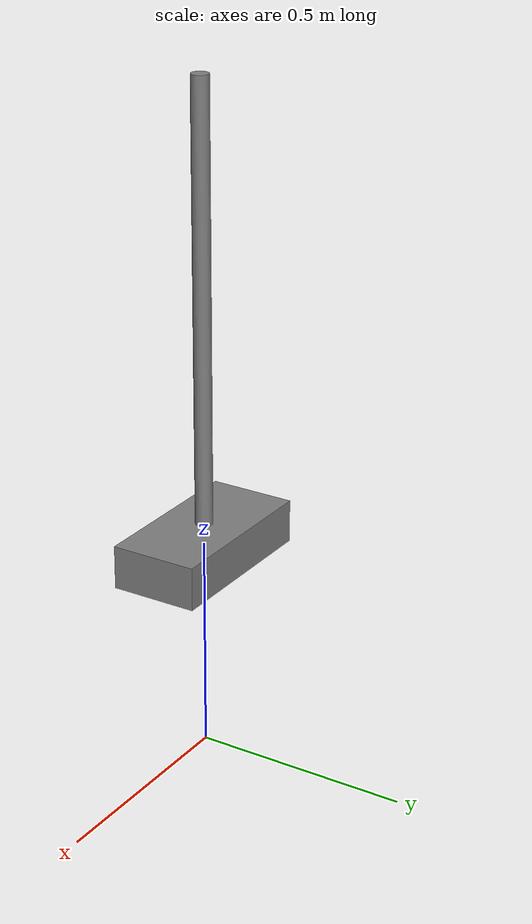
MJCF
<mujoco model="mjcf_test_bot">
  <compiler angle="radian"/>
  <asset>
    <texture type="skybox" builtin="flat" rgb1="0 0 0" rgb2="0 0 0" width="16" height="96"/>
    <texture type="2d" name="checker" builtin="checker" width="16" height="16"/>
  </asset>
  <worldbody>
    <body name="cart" pos="0 0 0.5">
      <geom name="cart_collision" type="box" size="0.2 0.1 0.05"/>
      <body name="pole" pos="0 0 0.05">
        <joint name="hinge" type="hinge" axis="0 1 0" range="-1.57 1.57" limited="true"/>
        <geom name="pole_collision" type="cylinder" size="0.02 0.5" pos="0 0 0.5"/>
      </body>
    </body>
  </worldbody>
  <actuator>
    <motor name="hinge_motor" joint="hinge" forcerange="-5 5"/>
  </actuator>
</mujoco>
